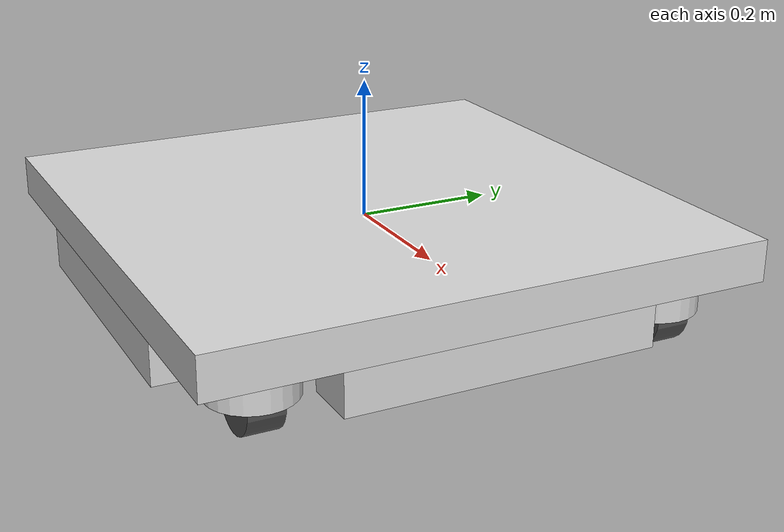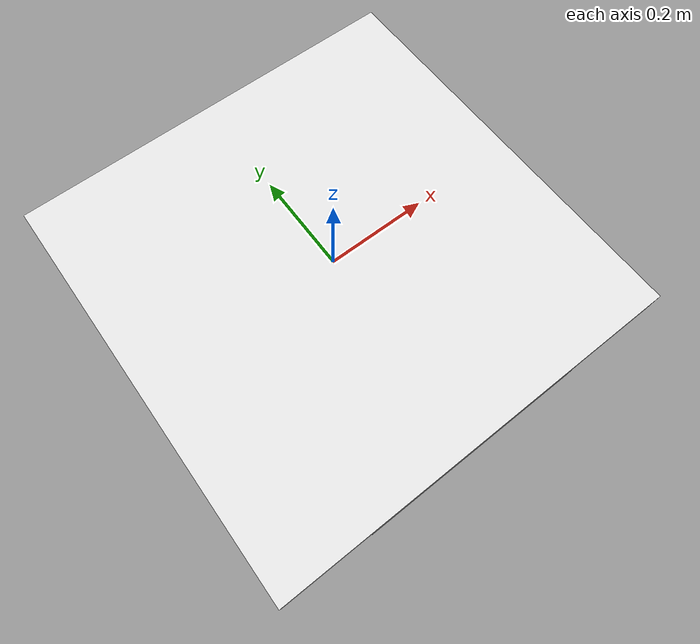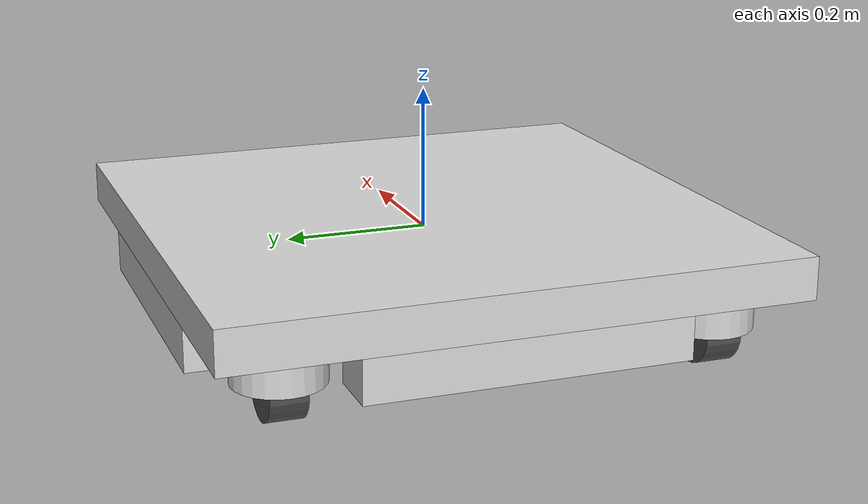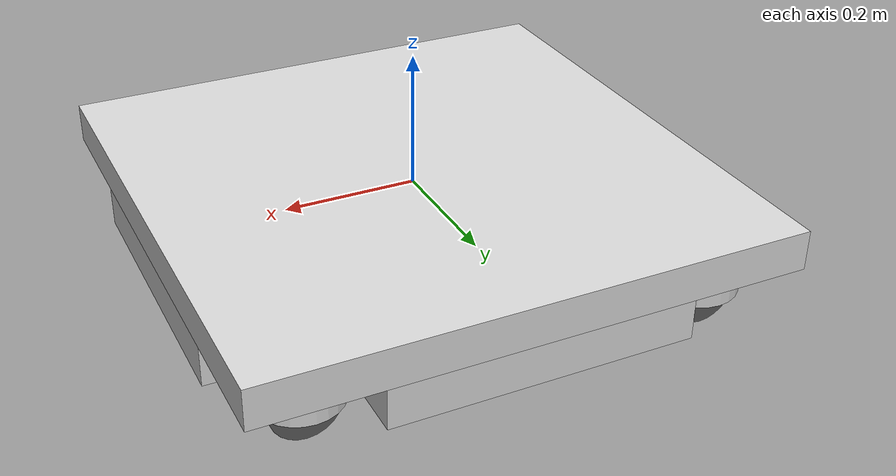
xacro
<?xml version="1.0"?>
<robot name="swervebot_diff" xmlns:xacro="http://www.ros.org/wiki/xacro">

    <xacro:include filename="inertial_macros.xacro"/>

    <!-- MATERIALS -->

    <material name="grey">
      <color rgba="0.35 0.35 0.35 1"/>
    </material>

    <material name="silver">
      <color rgba="0.86 0.86 0.86 1"/>
    </material>

    <!-- BASE LINK/FRAME -->

    <xacro:property name="frame_width" value="0.8"/>
    <xacro:property name="frame_length" value="0.8"/>
    <xacro:property name="frame_depth" value="0.06"/>

    <link name="base_link">
        <visual>
            <geometry>
                <box size="${frame_length} ${frame_width} ${frame_depth}"/>
            </geometry>
            <material name="silver"/>
        </visual>

        <collision>
            <geometry>
                <box size="${frame_length} ${frame_width} ${frame_depth}"/>
            </geometry>
        </collision>

        <xacro:inertial_box mass="1.5" x="${frame_length}" y="${frame_width}" z="${frame_depth}">
            <origin/>
        </xacro:inertial_box>
    </link>

    <!-- BUMPERS -->

    <xacro:property name="bumper_thick_x" value="${frame_length / 10}"/>
    <xacro:property name="bumper_length_x" value="${frame_width / 1.8}"/>
    <xacro:property name="bumper_thick_y" value="${frame_length / 1.8}"/>
    <xacro:property name="bumper_length_y" value="${frame_width / 10}"/>
    <xacro:property name="bumper_mass" value="0.5"/>

    <link name="bumper_front_link">
        <visual>
            <geometry>
                <box size="${bumper_thick_x} ${bumper_length_x} ${frame_depth}"/>
            </geometry>
            <material name="silver"/>
        </visual>

        <collision>
            <geometry>
                <box size="${bumper_thick_x} ${bumper_length_x} ${frame_depth * 1.2}"/>
            </geometry>
        </collision>

        <xacro:inertial_box mass="${bumper_mass}" x="${bumper_thick_x}" y="${bumper_length_x}" z="${frame_depth}">
            <origin/>
        </xacro:inertial_box>
    </link>

    <link name="bumper_left_link">
        <visual>
            <geometry>
                <box size="${bumper_thick_y} ${bumper_length_y} ${frame_depth}"/>
            </geometry>
            <material name="silver"/>
        </visual>

        <collision>
            <geometry>
                <box size="${bumper_thick_y} ${bumper_length_y} ${frame_depth}"/>
            </geometry>
        </collision>

        <xacro:inertial_box mass="${bumper_mass}" x="${bumper_thick_y}" y="${bumper_length_y}" z="${frame_depth}">
            <origin/>
        </xacro:inertial_box>
    </link>

    <link name="bumper_right_link">
        <visual>
            <geometry>
                <box size="${bumper_thick_y} ${bumper_length_y} ${frame_depth}"/>
            </geometry>
            <material name="silver"/>
        </visual>

        <collision>
            <geometry>
                <box size="${bumper_thick_y} ${bumper_length_y} ${frame_depth}"/>
            </geometry>
        </collision>

        <xacro:inertial_box mass="${bumper_mass}" x="${bumper_thick_y}" y="${bumper_length_y}" z="${frame_depth}">
            <origin/>
        </xacro:inertial_box>
    </link>

    <link name="bumper_rear_link">
        <visual>
            <geometry>
                <box size="${bumper_thick_x} ${bumper_length_x} ${frame_depth}"/>
            </geometry>
            <material name="silver"/>
        </visual>

        <collision>
            <geometry>
                <box size="${bumper_thick_x} ${bumper_length_x} ${frame_depth}"/>
            </geometry>
        </collision>

        <xacro:inertial_box mass="${bumper_mass}" x="${bumper_thick_x}" y="${bumper_length_x}" z="${frame_depth}">
            <origin/>
        </xacro:inertial_box>
    </link>

    <xacro:include filename="swervebot_wheel.xacro"/>

    <xacro:property name="set_wheel_radius" value="0.05"/>

    <xacro:swerve_wheel name="front_left" radius="${set_wheel_radius}" rotater_material="silver" spinner_material="grey"/>
    <xacro:swerve_wheel name="front_right" radius="${set_wheel_radius}" rotater_material="silver" spinner_material="grey"/>
    <xacro:swerve_wheel name="rear_left" radius="${set_wheel_radius}" rotater_material="silver" spinner_material="grey"/>
    <xacro:swerve_wheel name="rear_right" radius="${set_wheel_radius}" rotater_material="silver" spinner_material="grey"/>

    <!-- JOINTS -->

    <joint name="front_left_wheel_joint" type="continuous">
        <origin xyz="${frame_length * 0.45 - set_wheel_radius * 1.25} ${frame_width * 0.45 - set_wheel_radius * 1.25} ${-0.55 * set_wheel_radius - frame_depth / 2}"
                rpy="0 0 ${pi}"
        />
        <parent link="base_link"/>
        <child link="front_left_rotater_link"/>
        <axis xyz="0 0 1"/>
    </joint>

    <joint name="front_right_wheel_joint" type="continuous">
        <origin xyz="${frame_length * 0.45 - set_wheel_radius * 1.25} -${frame_width * 0.45 - set_wheel_radius * 1.25} ${-0.55 * set_wheel_radius - frame_depth / 2}"
                rpy="0 0 ${pi}"
        />
        <parent link="base_link"/>
        <child link="front_right_rotater_link"/>
        <axis xyz="0 0 1"/>
    </joint>

    <joint name="rear_left_wheel_joint" type="continuous">
        <origin xyz="-${frame_length * 0.45 - set_wheel_radius * 1.25} -${frame_width * 0.45 - set_wheel_radius * 1.25} ${-0.55 * set_wheel_radius - frame_depth / 2}"
                rpy="0 0 ${pi}"
        />
        <parent link="base_link"/>
        <child link="rear_left_rotater_link"/>
        <axis xyz="0 0 1"/>
    </joint>

    <joint name="rear_right_wheel_joint" type="continuous">
        <origin xyz="-${frame_length * 0.45 - set_wheel_radius * 1.25} ${frame_width * 0.45 - set_wheel_radius * 1.25} ${-0.55 * set_wheel_radius - frame_depth / 2}"
                rpy="0 0 ${pi}"
        />
        <parent link="base_link"/>
        <child link="rear_right_rotater_link"/>
        <axis xyz="0 0 1"/>
    </joint>

    <joint name="bumper_front_joint" type="fixed">
        <origin xyz="${frame_length / 2 - bumper_thick_x / 2} 0 -${frame_depth}"/>
        <parent link="base_link"/>
        <child link="bumper_front_link"/>
    </joint>

    <joint name="bumper_left_joint" type="fixed">
        <origin xyz="0 ${frame_width / 2 - bumper_length_y / 2} -${frame_depth}"/>
        <parent link="base_link"/>
        <child link="bumper_left_link"/>
    </joint>

    <joint name="bumper_right_joint" type="fixed">
        <origin xyz="0 -${frame_width / 2 - bumper_length_y / 2} -${frame_depth}"/>
        <parent link="base_link"/>
        <child link="bumper_right_link"/>
    </joint>

    <joint name="bumper_rear_joint" type="fixed">
        <origin xyz="-${frame_length / 2 - bumper_thick_x / 2} 0 -${frame_depth}"/>
        <parent link="base_link"/>
        <child link="bumper_rear_link"/>
    </joint>

</robot>

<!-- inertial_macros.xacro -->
<robot xmlns:xacro="http://www.ros.org/wiki/xacro">

    <!-- INERTIAL MACROS -->
    <xacro:macro name="inertial_box" params="mass x y z *origin">
      <inertial>
        <xacro:insert_block name="origin"/>
        <mass value="${mass}" />
        <inertia ixx="${(1/12) * mass * (y*y+z*z)}" ixy="0.0" ixz="0.0"
                iyy="${(1/12) * mass * (x*x+z*z)}" iyz="0.0"
                izz="${(1/12) * mass * (x*x+y*y)}" />
      </inertial>
    </xacro:macro>

    <xacro:macro name="inertial_cylinder" params="mass length radius *origin">
        <inertial>
            <xacro:insert_block name="origin"/>
            <mass value="${mass}" />
            <inertia ixx="${(1/12) * mass * (3*radius*radius + length*length)}" ixy="0.0" ixz="0.0"
                    iyy="${(1/12) * mass * (3*radius*radius + length*length)}" iyz="0.0"
                    izz="${(1/2) * mass * (radius*radius)}" />
        </inertial>
    </xacro:macro>

    <xacro:macro name="inertial_cylinder" params="mass length radius *origin">
        <inertial>
            <xacro:insert_block name="origin"/>
            <mass value="${mass}" />
            <inertia ixx="${(1/12) * mass * (3*radius*radius + length*length)}" ixy="0.0" ixz="0.0"
                    iyy="${(1/12) * mass * (3*radius*radius + length*length)}" iyz="0.0"
                    izz="${(1/2) * mass * (radius*radius)}" />
        </inertial>
    </xacro:macro>

</robot>

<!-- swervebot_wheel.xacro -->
<robot xmlns:xacro="http://www.ros.org/wiki/xacro">

    <!-- DIFFERENTIAL SWERVE WHEEL MACRO -->
    <xacro:macro name="swerve_wheel" params="name radius rotater_material spinner_material">

        <xacro:property name="wheel_radius" value="${radius}"/>

        <!-- Uncomment this and its joint to rotater to find out the front face of the wheel -->

        <link name="${name}_rotater_link">
            <visual>
                <geometry>
                    <cylinder radius="${wheel_radius * 1.25}" length="${wheel_radius * 1.1}"/>
                </geometry>
                <material name="${rotater_material}"/>
            </visual>

            <collision>
                <geometry>
                    <cylinder radius="${wheel_radius * 1.25}" length="${wheel_radius * 1.1}"/>
                </geometry>
            </collision>

            <xacro:inertial_cylinder mass="${wheel_radius * 3}" length="${wheel_radius * 1.1}" radius="${wheel_radius * 1.25}">
                <origin/>
            </xacro:inertial_cylinder>
        </link>

        <link name="${name}_spinner_link">
            <visual>
                <geometry>
                    <cylinder radius="${wheel_radius * 1}" length="${wheel_radius * 1}"/>
                </geometry>
                <material name="${spinner_material}"/>
            </visual>

            <collision>
                <geometry>
                    <cylinder radius="${wheel_radius * 1}" length="${wheel_radius * 1}"/>
                </geometry>
            </collision>

            <xacro:inertial_cylinder mass="${wheel_radius * 5}" length="${wheel_radius * 1}" radius="${wheel_radius * 1}">
                <origin/>
            </xacro:inertial_cylinder>
        </link>

        <joint name="${name}_swerve_joint" type="continuous">
            <origin xyz="0 0 ${wheel_radius * -0.55}" rpy="${pi/2} 0 0"/>
            <parent link="${name}_rotater_link"/>
            <child link="${name}_spinner_link"/>
            <axis xyz="0 0 1"/>
        </joint>

    </xacro:macro>

</robot>
